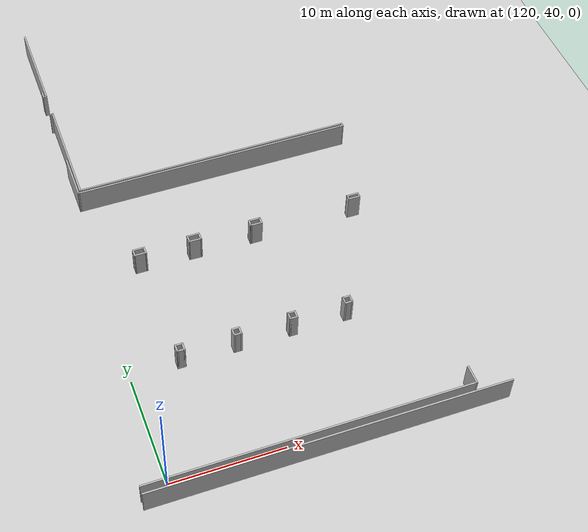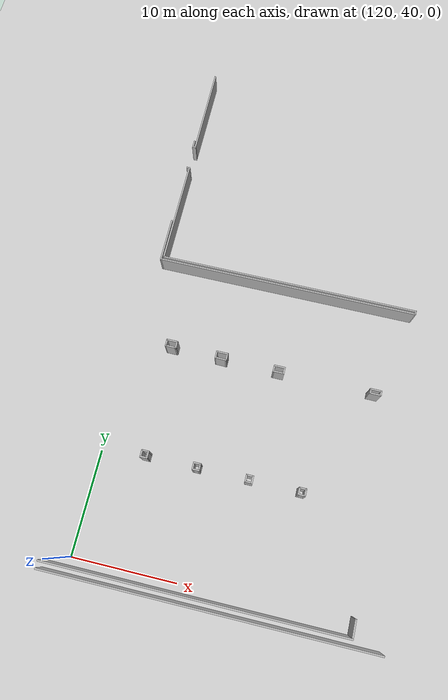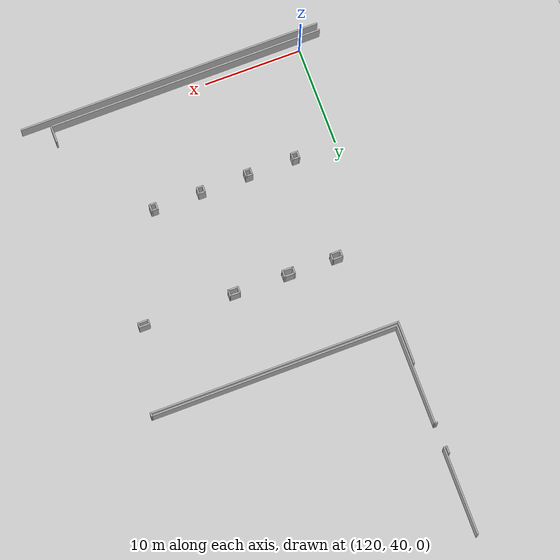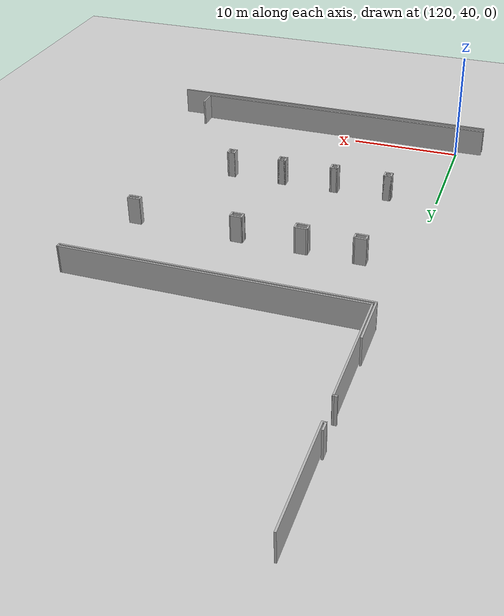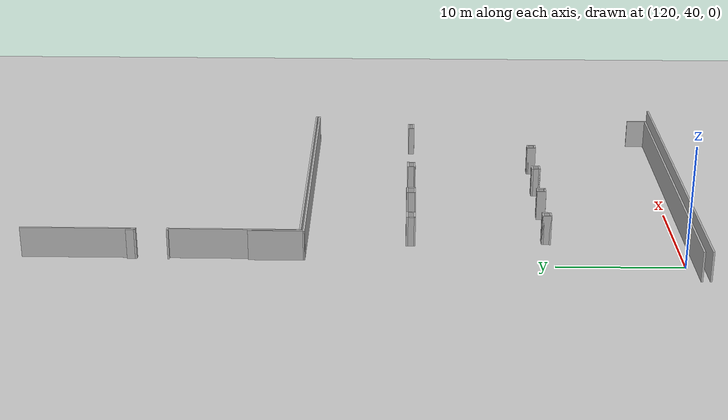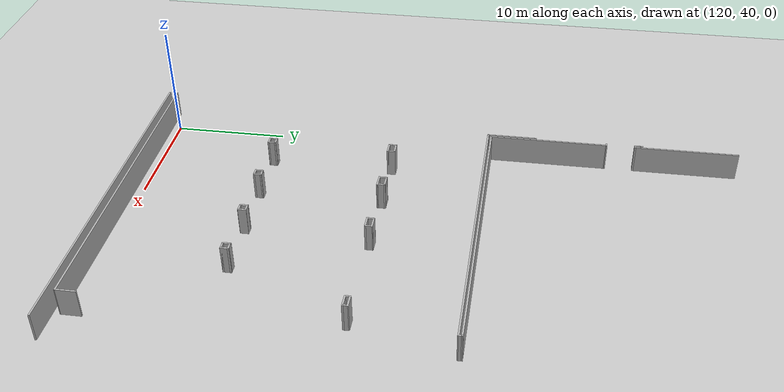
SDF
<sdf version="1.6">
 <world name="default">
  <model name="ground_plane">
   <static>1</static>
   <link name="link">
    <collision name="collision">
     <geometry><plane><normal>0 0 1</normal><size>200 100</size></plane></geometry>
     <surface><friction><ode><mu>100</mu><mu2>50</mu2></ode></friction></surface>
    </collision>
    <visual name="visual">
     <cast_shadows>0</cast_shadows>
     <geometry><plane><normal>0 0 1</normal><size>200 100</size></plane></geometry>
     <material>
      <script><uri>file://media/materials/scripts/gazebo.material</uri><name>Gazebo/Grey</name></script>
     </material>
    </visual>
   </link>
  </model>
  <model name="vgke_production">
   <link name="Wall_145">
    <pose>47.3262 -7.39589 0 0 0 -1.57134</pose>
    <visual name="Wall_145_Visual">
     <pose>0 0 1.25 0 -0 0</pose>
     <geometry><box><size>1.74298 0.15 2.5</size></box></geometry>
    </visual>
    <collision name="Wall_145_Collision">
     <pose>0 0 1.25 0 -0 0</pose>
     <geometry><box><size>1.74298 0.15 2.5</size></box></geometry>
    </collision>
    <inertial>
     <inertia><ixx>1</ixx><ixy>0</ixy><ixz>0</ixz><iyy>1</iyy><iyz>0</iyz><izz>1</izz></inertia>
     <mass>1</mass>
    </inertial>
   </link>
   <link name="Wall_146">
    <pose>33.2248 -8.19956 0 0 0 -3.14108</pose>
    <visual name="Wall_146_Visual">
     <pose>0 0 1.25 0 -0 0</pose>
     <geometry><box><size>28.3519 0.15 2.5</size></box></geometry>
    </visual>
    <collision name="Wall_146_Collision">
     <pose>0 0 1.25 0 -0 0</pose>
     <geometry><box><size>28.3519 0.15 2.5</size></box></geometry>
    </collision>
    <inertial>
     <inertia><ixx>1</ixx><ixy>0</ixy><ixz>0</ixz><iyy>1</iyy><iyz>0</iyz><izz>1</izz></inertia>
     <mass>1</mass>
    </inertial>
   </link>
   <link name="Wall_151">
    <pose>34.6412 -8.90508 0 0 0 -9.4e-05</pose>
    <visual name="Wall_151_Visual">
     <pose>0 0 1.25 0 -0 0</pose>
     <geometry><box><size>31.1928 0.15 2.5</size></box></geometry>
    </visual>
    <collision name="Wall_151_Collision">
     <pose>0 0 1.25 0 -0 0</pose>
     <geometry><box><size>31.1928 0.15 2.5</size></box></geometry>
    </collision>
    <inertial>
     <inertia><ixx>1</ixx><ixy>0</ixy><ixz>0</ixz><iyy>1</iyy><iyz>0</iyz><izz>1</izz></inertia>
     <mass>1</mass>
    </inertial>
   </link>
   <link name="Wall_276">
    <pose>22.4941 27.4899 0 0 0 -1.57232</pose>
    <visual name="Wall_276_Visual">
     <pose>0 0 1.25 0 -0 0</pose>
     <geometry><box><size>10.4484 0.15 2.5</size></box></geometry>
    </visual>
    <collision name="Wall_276_Collision">
     <pose>0 0 1.25 0 -0 0</pose>
     <geometry><box><size>10.4484 0.15 2.5</size></box></geometry>
    </collision>
    <inertial>
     <inertia><ixx>1</ixx><ixy>0</ixy><ixz>0</ixz><iyy>1</iyy><iyz>0</iyz><izz>1</izz></inertia>
     <mass>1</mass>
    </inertial>
   </link>
   <link name="Wall_283">
    <pose>35.2418 22.3511 0 0 -0 0.001052</pose>
    <visual name="Wall_283_Visual">
     <pose>0 0 1.25 0 -0 0</pose>
     <geometry><box><size>25.643 0.15 2.5</size></box></geometry>
    </visual>
    <collision name="Wall_283_Collision">
     <pose>0 0 1.25 0 -0 0</pose>
     <geometry><box><size>25.643 0.15 2.5</size></box></geometry>
    </collision>
    <inertial>
     <inertia><ixx>1</ixx><ixy>0</ixy><ixz>0</ixz><iyy>1</iyy><iyz>0</iyz><izz>1</izz></inertia>
     <mass>1</mass>
    </inertial>
   </link>
   <link name="Wall_285">
    <pose>47.9869 22.2247 0 0 0 -1.5806</pose>
    <visual name="Wall_285_Visual">
     <pose>0 0 1.25 0 -0 0</pose>
     <geometry><box><size>0.429582 0.15 2.5</size></box></geometry>
    </visual>
    <collision name="Wall_285_Collision">
     <pose>0 0 1.25 0 -0 0</pose>
     <geometry><box><size>0.429582 0.15 2.5</size></box></geometry>
    </collision>
    <inertial>
     <inertia><ixx>1</ixx><ixy>0</ixy><ixz>0</ixz><iyy>1</iyy><iyz>0</iyz><izz>1</izz></inertia>
     <mass>1</mass>
    </inertial>
   </link>
   <link name="Wall_289">
    <pose>35.1231 22.0665 0 0 0 -3.14016</pose>
    <visual name="Wall_289_Visual">
     <pose>0 0 1.25 0 -0 0</pose>
     <geometry><box><size>25.8749 0.15 2.5</size></box></geometry>
    </visual>
    <collision name="Wall_289_Collision">
     <pose>0 0 1.25 0 -0 0</pose>
     <geometry><box><size>25.8749 0.15 2.5</size></box></geometry>
    </collision>
    <inertial>
     <inertia><ixx>1</ixx><ixy>0</ixy><ixz>0</ixz><iyy>1</iyy><iyz>0</iyz><izz>1</izz></inertia>
     <mass>1</mass>
    </inertial>
   </link>
   <link name="Wall_292">
    <pose>22.2626 24.1887 0 0 -0 1.56991</pose>
    <visual name="Wall_292_Visual">
     <pose>0 0 1.25 0 -0 0</pose>
     <geometry><box><size>4.43148 0.15 2.5</size></box></geometry>
    </visual>
    <collision name="Wall_292_Collision">
     <pose>0 0 1.25 0 -0 0</pose>
     <geometry><box><size>4.43148 0.15 2.5</size></box></geometry>
    </collision>
    <inertial>
     <inertia><ixx>1</ixx><ixy>0</ixy><ixz>0</ixz><iyy>1</iyy><iyz>0</iyz><izz>1</izz></inertia>
     <mass>1</mass>
    </inertial>
   </link>
   <link name="Wall_412">
    <pose>25.5392 14.0389 0 0 -0 0</pose>
    <visual name="Wall_412_Visual">
     <pose>0 0 1.25 0 -0 0</pose>
     <geometry><box><size>1.13191 0.15 2.5</size></box></geometry>
    </visual>
    <collision name="Wall_412_Collision">
     <pose>0 0 1.25 0 -0 0</pose>
     <geometry><box><size>1.13191 0.15 2.5</size></box></geometry>
    </collision>
    <inertial>
     <inertia><ixx>1</ixx><ixy>0</ixy><ixz>0</ixz><iyy>1</iyy><iyz>0</iyz><izz>1</izz></inertia>
     <mass>1</mass>
    </inertial>
   </link>
   <link name="Wall_413">
    <pose>26.0302 13.7389 0 0 0 -1.5708</pose>
    <visual name="Wall_413_Visual">
     <pose>0 0 1.25 0 -0 0</pose>
     <geometry><box><size>0.75 0.15 2.5</size></box></geometry>
    </visual>
    <collision name="Wall_413_Collision">
     <pose>0 0 1.25 0 -0 0</pose>
     <geometry><box><size>0.75 0.15 2.5</size></box></geometry>
    </collision>
    <inertial>
     <inertia><ixx>1</ixx><ixy>0</ixy><ixz>0</ixz><iyy>1</iyy><iyz>0</iyz><izz>1</izz></inertia>
     <mass>1</mass>
    </inertial>
   </link>
   <link name="Wall_417">
    <pose>25.5392 13.4394 0 0 -0 3.14051</pose>
    <visual name="Wall_417_Visual">
     <pose>0 0 1.25 0 -0 0</pose>
     <geometry><box><size>1.1319 0.15 2.5</size></box></geometry>
    </visual>
    <collision name="Wall_417_Collision">
     <pose>0 0 1.25 0 -0 0</pose>
     <geometry><box><size>1.1319 0.15 2.5</size></box></geometry>
    </collision>
    <inertial>
     <inertia><ixx>1</ixx><ixy>0</ixy><ixz>0</ixz><iyy>1</iyy><iyz>0</iyz><izz>1</izz></inertia>
     <mass>1</mass>
    </inertial>
   </link>
   <link name="Wall_418">
    <pose>25.0483 13.7394 0 0 -0 1.5708</pose>
    <visual name="Wall_418_Visual">
     <pose>0 0 1.25 0 -0 0</pose>
     <geometry><box><size>0.748933 0.15 2.5</size></box></geometry>
    </visual>
    <collision name="Wall_418_Collision">
     <pose>0 0 1.25 0 -0 0</pose>
     <geometry><box><size>0.748933 0.15 2.5</size></box></geometry>
    </collision>
    <inertial>
     <inertia><ixx>1</ixx><ixy>0</ixy><ixz>0</ixz><iyy>1</iyy><iyz>0</iyz><izz>1</izz></inertia>
     <mass>1</mass>
    </inertial>
   </link>
   <link name="Wall_424">
    <pose>30.5232 13.9827 0 0 -0 0</pose>
    <visual name="Wall_424_Visual">
     <pose>0 0 1.25 0 -0 0</pose>
     <geometry><box><size>1.19162 0.15 2.5</size></box></geometry>
    </visual>
    <collision name="Wall_424_Collision">
     <pose>0 0 1.25 0 -0 0</pose>
     <geometry><box><size>1.19162 0.15 2.5</size></box></geometry>
    </collision>
    <inertial>
     <inertia><ixx>1</ixx><ixy>0</ixy><ixz>0</ixz><iyy>1</iyy><iyz>0</iyz><izz>1</izz></inertia>
     <mass>1</mass>
    </inertial>
   </link>
   <link name="Wall_428">
    <pose>30.0024 13.6796 0 0 0 -1.5708</pose>
    <visual name="Wall_428_Visual">
     <pose>0 0 1.25 0 -0 0</pose>
     <geometry><box><size>0.756251 0.15 2.5</size></box></geometry>
    </visual>
    <collision name="Wall_428_Collision">
     <pose>0 0 1.25 0 -0 0</pose>
     <geometry><box><size>0.756251 0.15 2.5</size></box></geometry>
    </collision>
    <inertial>
     <inertia><ixx>1</ixx><ixy>0</ixy><ixz>0</ixz><iyy>1</iyy><iyz>0</iyz><izz>1</izz></inertia>
     <mass>1</mass>
    </inertial>
   </link>
   <link name="Wall_430">
    <pose>31.044 13.6668 0 0 0 -1.5708</pose>
    <visual name="Wall_430_Visual">
     <pose>0 0 1.25 0 -0 0</pose>
     <geometry><box><size>0.782323 0.15 2.5</size></box></geometry>
    </visual>
    <collision name="Wall_430_Collision">
     <pose>0 0 1.25 0 -0 0</pose>
     <geometry><box><size>0.782323 0.15 2.5</size></box></geometry>
    </collision>
    <inertial>
     <inertia><ixx>1</ixx><ixy>0</ixy><ixz>0</ixz><iyy>1</iyy><iyz>0</iyz><izz>1</izz></inertia>
     <mass>1</mass>
    </inertial>
   </link>
   <link name="Wall_431">
    <pose>30.5232 13.3637 0 0 -0 3.11701</pose>
    <visual name="Wall_431_Visual">
     <pose>0 0 1.25 0 -0 0</pose>
     <geometry><box><size>1.19194 0.15 2.5</size></box></geometry>
    </visual>
    <collision name="Wall_431_Collision">
     <pose>0 0 1.25 0 -0 0</pose>
     <geometry><box><size>1.19194 0.15 2.5</size></box></geometry>
    </collision>
    <inertial>
     <inertia><ixx>1</ixx><ixy>0</ixy><ixz>0</ixz><iyy>1</iyy><iyz>0</iyz><izz>1</izz></inertia>
     <mass>1</mass>
    </inertial>
   </link>
   <link name="Wall_433">
    <pose>36.2009 13.8845 0 0 0 -0.008772</pose>
    <visual name="Wall_433_Visual">
     <pose>0 0 1.25 0 -0 0</pose>
     <geometry><box><size>1.12332 0.15 2.5</size></box></geometry>
    </visual>
    <collision name="Wall_433_Collision">
     <pose>0 0 1.25 0 -0 0</pose>
     <geometry><box><size>1.12332 0.15 2.5</size></box></geometry>
    </collision>
    <inertial>
     <inertia><ixx>1</ixx><ixy>0</ixy><ixz>0</ixz><iyy>1</iyy><iyz>0</iyz><izz>1</izz></inertia>
     <mass>1</mass>
    </inertial>
   </link>
   <link name="Wall_434">
    <pose>36.6876 13.6071 0 0 0 -1.5708</pose>
    <visual name="Wall_434_Visual">
     <pose>0 0 1.25 0 -0 0</pose>
     <geometry><box><size>0.696425 0.15 2.5</size></box></geometry>
    </visual>
    <collision name="Wall_434_Collision">
     <pose>0 0 1.25 0 -0 0</pose>
     <geometry><box><size>0.696425 0.15 2.5</size></box></geometry>
    </collision>
    <inertial>
     <inertia><ixx>1</ixx><ixy>0</ixy><ixz>0</ixz><iyy>1</iyy><iyz>0</iyz><izz>1</izz></inertia>
     <mass>1</mass>
    </inertial>
   </link>
   <link name="Wall_435">
    <pose>36.1924 13.3338 0 0 -0 3.14159</pose>
    <visual name="Wall_435_Visual">
     <pose>0 0 1.25 0 -0 0</pose>
     <geometry><box><size>1.14043 0.15 2.5</size></box></geometry>
    </visual>
    <collision name="Wall_435_Collision">
     <pose>0 0 1.25 0 -0 0</pose>
     <geometry><box><size>1.14043 0.15 2.5</size></box></geometry>
    </collision>
    <inertial>
     <inertia><ixx>1</ixx><ixy>0</ixy><ixz>0</ixz><iyy>1</iyy><iyz>0</iyz><izz>1</izz></inertia>
     <mass>1</mass>
    </inertial>
   </link>
   <link name="Wall_436">
    <pose>35.7057 13.6113 0 0 -0 1.54004</pose>
    <visual name="Wall_436_Visual">
     <pose>0 0 1.25 0 -0 0</pose>
     <geometry><box><size>0.705226 0.15 2.5</size></box></geometry>
    </visual>
    <collision name="Wall_436_Collision">
     <pose>0 0 1.25 0 -0 0</pose>
     <geometry><box><size>0.705226 0.15 2.5</size></box></geometry>
    </collision>
    <inertial>
     <inertia><ixx>1</ixx><ixy>0</ixy><ixz>0</ixz><iyy>1</iyy><iyz>0</iyz><izz>1</izz></inertia>
     <mass>1</mass>
    </inertial>
   </link>
   <link name="Wall_444">
    <pose>45.5664 13.7342 0 0 0 -0.003759</pose>
    <visual name="Wall_444_Visual">
     <pose>0 0 1.25 0 -0 0</pose>
     <geometry><box><size>1.13186 0.15 2.5</size></box></geometry>
    </visual>
    <collision name="Wall_444_Collision">
     <pose>0 0 1.25 0 -0 0</pose>
     <geometry><box><size>1.13186 0.15 2.5</size></box></geometry>
    </collision>
    <inertial>
     <inertia><ixx>1</ixx><ixy>0</ixy><ixz>0</ixz><iyy>1</iyy><iyz>0</iyz><izz>1</izz></inertia>
     <mass>1</mass>
    </inertial>
   </link>
   <link name="Wall_445">
    <pose>46.0573 13.5221 0 0 0 -1.5708</pose>
    <visual name="Wall_445_Visual">
     <pose>0 0 1.25 0 -0 0</pose>
     <geometry><box><size>0.410212 0.15 2.5</size></box></geometry>
    </visual>
    <collision name="Wall_445_Collision">
     <pose>0 0 1.25 0 -0 0</pose>
     <geometry><box><size>0.410212 0.15 2.5</size></box></geometry>
    </collision>
    <inertial>
     <inertia><ixx>1</ixx><ixy>0</ixy><ixz>0</ixz><iyy>1</iyy><iyz>0</iyz><izz>1</izz></inertia>
     <mass>1</mass>
    </inertial>
   </link>
   <link name="Wall_446">
    <pose>45.5656 13.3386 0 0 -0 3.1341</pose>
    <visual name="Wall_446_Visual">
     <pose>0 0 1.25 0 -0 0</pose>
     <geometry><box><size>1.13557 0.15 2.5</size></box></geometry>
    </visual>
    <collision name="Wall_446_Collision">
     <pose>0 0 1.25 0 -0 0</pose>
     <geometry><box><size>1.13557 0.15 2.5</size></box></geometry>
    </collision>
    <inertial>
     <inertia><ixx>1</ixx><ixy>0</ixy><ixz>0</ixz><iyy>1</iyy><iyz>0</iyz><izz>1</izz></inertia>
     <mass>1</mass>
    </inertial>
   </link>
   <link name="Wall_447">
    <pose>45.074 13.5269 0 0 -0 1.56385</pose>
    <visual name="Wall_447_Visual">
     <pose>0 0 1.25 0 -0 0</pose>
     <geometry><box><size>0.509887 0.15 2.5</size></box></geometry>
    </visual>
    <collision name="Wall_447_Collision">
     <pose>0 0 1.25 0 -0 0</pose>
     <geometry><box><size>0.509887 0.15 2.5</size></box></geometry>
    </collision>
    <inertial>
     <inertia><ixx>1</ixx><ixy>0</ixy><ixz>0</ixz><iyy>1</iyy><iyz>0</iyz><izz>1</izz></inertia>
     <mass>1</mass>
    </inertial>
   </link>
   <link name="Wall_450">
    <pose>40.3613 2.93319 0 0 0 -1.5708</pose>
    <visual name="Wall_450_Visual">
     <pose>0 0 1.25 0 -0 0</pose>
     <geometry><box><size>0.75 0.15 2.5</size></box></geometry>
    </visual>
    <collision name="Wall_450_Collision">
     <pose>0 0 1.25 0 -0 0</pose>
     <geometry><box><size>0.75 0.15 2.5</size></box></geometry>
    </collision>
    <inertial>
     <inertia><ixx>1</ixx><ixy>0</ixy><ixz>0</ixz><iyy>1</iyy><iyz>0</iyz><izz>1</izz></inertia>
     <mass>1</mass>
    </inertial>
   </link>
   <link name="Wall_451">
    <pose>40.6613 2.6332 0 0 -0 0</pose>
    <visual name="Wall_451_Visual">
     <pose>0 0 1.25 0 -0 0</pose>
     <geometry><box><size>0.75 0.15 2.5</size></box></geometry>
    </visual>
    <collision name="Wall_451_Collision">
     <pose>0 0 1.25 0 -0 0</pose>
     <geometry><box><size>0.75 0.15 2.5</size></box></geometry>
    </collision>
    <inertial>
     <inertia><ixx>1</ixx><ixy>0</ixy><ixz>0</ixz><iyy>1</iyy><iyz>0</iyz><izz>1</izz></inertia>
     <mass>1</mass>
    </inertial>
   </link>
   <link name="Wall_452">
    <pose>40.9613 2.93319 0 0 -0 1.5708</pose>
    <visual name="Wall_452_Visual">
     <pose>0 0 1.25 0 -0 0</pose>
     <geometry><box><size>0.75 0.15 2.5</size></box></geometry>
    </visual>
    <collision name="Wall_452_Collision">
     <pose>0 0 1.25 0 -0 0</pose>
     <geometry><box><size>0.75 0.15 2.5</size></box></geometry>
    </collision>
    <inertial>
     <inertia><ixx>1</ixx><ixy>0</ixy><ixz>0</ixz><iyy>1</iyy><iyz>0</iyz><izz>1</izz></inertia>
     <mass>1</mass>
    </inertial>
   </link>
   <link name="Wall_453">
    <pose>40.6613 3.23319 0 0 -0 3.14159</pose>
    <visual name="Wall_453_Visual">
     <pose>0 0 1.25 0 -0 0</pose>
     <geometry><box><size>0.75 0.15 2.5</size></box></geometry>
    </visual>
    <collision name="Wall_453_Collision">
     <pose>0 0 1.25 0 -0 0</pose>
     <geometry><box><size>0.75 0.15 2.5</size></box></geometry>
    </collision>
    <inertial>
     <inertia><ixx>1</ixx><ixy>0</ixy><ixz>0</ixz><iyy>1</iyy><iyz>0</iyz><izz>1</izz></inertia>
     <mass>1</mass>
    </inertial>
   </link>
   <link name="Wall_455">
    <pose>35.7102 3.2554 0 0 -0 0</pose>
    <visual name="Wall_455_Visual">
     <pose>0 0 1.25 0 -0 0</pose>
     <geometry><box><size>0.75 0.15 2.5</size></box></geometry>
    </visual>
    <collision name="Wall_455_Collision">
     <pose>0 0 1.25 0 -0 0</pose>
     <geometry><box><size>0.75 0.15 2.5</size></box></geometry>
    </collision>
    <inertial>
     <inertia><ixx>1</ixx><ixy>0</ixy><ixz>0</ixz><iyy>1</iyy><iyz>0</iyz><izz>1</izz></inertia>
     <mass>1</mass>
    </inertial>
   </link>
   <link name="Wall_456">
    <pose>36.0102 2.9554 0 0 0 -1.5708</pose>
    <visual name="Wall_456_Visual">
     <pose>0 0 1.25 0 -0 0</pose>
     <geometry><box><size>0.75 0.15 2.5</size></box></geometry>
    </visual>
    <collision name="Wall_456_Collision">
     <pose>0 0 1.25 0 -0 0</pose>
     <geometry><box><size>0.75 0.15 2.5</size></box></geometry>
    </collision>
    <inertial>
     <inertia><ixx>1</ixx><ixy>0</ixy><ixz>0</ixz><iyy>1</iyy><iyz>0</iyz><izz>1</izz></inertia>
     <mass>1</mass>
    </inertial>
   </link>
   <link name="Wall_457">
    <pose>35.7102 2.6554 0 0 -0 3.14159</pose>
    <visual name="Wall_457_Visual">
     <pose>0 0 1.25 0 -0 0</pose>
     <geometry><box><size>0.75 0.15 2.5</size></box></geometry>
    </visual>
    <collision name="Wall_457_Collision">
     <pose>0 0 1.25 0 -0 0</pose>
     <geometry><box><size>0.75 0.15 2.5</size></box></geometry>
    </collision>
    <inertial>
     <inertia><ixx>1</ixx><ixy>0</ixy><ixz>0</ixz><iyy>1</iyy><iyz>0</iyz><izz>1</izz></inertia>
     <mass>1</mass>
    </inertial>
   </link>
   <link name="Wall_458">
    <pose>35.4102 2.9554 0 0 -0 1.5708</pose>
    <visual name="Wall_458_Visual">
     <pose>0 0 1.25 0 -0 0</pose>
     <geometry><box><size>0.75 0.15 2.5</size></box></geometry>
    </visual>
    <collision name="Wall_458_Collision">
     <pose>0 0 1.25 0 -0 0</pose>
     <geometry><box><size>0.75 0.15 2.5</size></box></geometry>
    </collision>
    <inertial>
     <inertia><ixx>1</ixx><ixy>0</ixy><ixz>0</ixz><iyy>1</iyy><iyz>0</iyz><izz>1</izz></inertia>
     <mass>1</mass>
    </inertial>
   </link>
   <link name="Wall_461">
    <pose>30.748 3.23319 0 0 -0 0</pose>
    <visual name="Wall_461_Visual">
     <pose>0 0 1.25 0 -0 0</pose>
     <geometry><box><size>0.75 0.15 2.5</size></box></geometry>
    </visual>
    <collision name="Wall_461_Collision">
     <pose>0 0 1.25 0 -0 0</pose>
     <geometry><box><size>0.75 0.15 2.5</size></box></geometry>
    </collision>
    <inertial>
     <inertia><ixx>1</ixx><ixy>0</ixy><ixz>0</ixz><iyy>1</iyy><iyz>0</iyz><izz>1</izz></inertia>
     <mass>1</mass>
    </inertial>
   </link>
   <link name="Wall_462">
    <pose>31.048 2.93319 0 0 0 -1.5708</pose>
    <visual name="Wall_462_Visual">
     <pose>0 0 1.25 0 -0 0</pose>
     <geometry><box><size>0.75 0.15 2.5</size></box></geometry>
    </visual>
    <collision name="Wall_462_Collision">
     <pose>0 0 1.25 0 -0 0</pose>
     <geometry><box><size>0.75 0.15 2.5</size></box></geometry>
    </collision>
    <inertial>
     <inertia><ixx>1</ixx><ixy>0</ixy><ixz>0</ixz><iyy>1</iyy><iyz>0</iyz><izz>1</izz></inertia>
     <mass>1</mass>
    </inertial>
   </link>
   <link name="Wall_463">
    <pose>30.748 2.6332 0 0 -0 3.14159</pose>
    <visual name="Wall_463_Visual">
     <pose>0 0 1.25 0 -0 0</pose>
     <geometry><box><size>0.75 0.15 2.5</size></box></geometry>
    </visual>
    <collision name="Wall_463_Collision">
     <pose>0 0 1.25 0 -0 0</pose>
     <geometry><box><size>0.75 0.15 2.5</size></box></geometry>
    </collision>
    <inertial>
     <inertia><ixx>1</ixx><ixy>0</ixy><ixz>0</ixz><iyy>1</iyy><iyz>0</iyz><izz>1</izz></inertia>
     <mass>1</mass>
    </inertial>
   </link>
   <link name="Wall_464">
    <pose>30.448 2.93319 0 0 -0 1.5708</pose>
    <visual name="Wall_464_Visual">
     <pose>0 0 1.25 0 -0 0</pose>
     <geometry><box><size>0.75 0.15 2.5</size></box></geometry>
    </visual>
    <collision name="Wall_464_Collision">
     <pose>0 0 1.25 0 -0 0</pose>
     <geometry><box><size>0.75 0.15 2.5</size></box></geometry>
    </collision>
    <inertial>
     <inertia><ixx>1</ixx><ixy>0</ixy><ixz>0</ixz><iyy>1</iyy><iyz>0</iyz><izz>1</izz></inertia>
     <mass>1</mass>
    </inertial>
   </link>
   <link name="Wall_466">
    <pose>25.8079 3.2443 0 0 -0 0</pose>
    <visual name="Wall_466_Visual">
     <pose>0 0 1.25 0 -0 0</pose>
     <geometry><box><size>0.75 0.15 2.5</size></box></geometry>
    </visual>
    <collision name="Wall_466_Collision">
     <pose>0 0 1.25 0 -0 0</pose>
     <geometry><box><size>0.75 0.15 2.5</size></box></geometry>
    </collision>
    <inertial>
     <inertia><ixx>1</ixx><ixy>0</ixy><ixz>0</ixz><iyy>1</iyy><iyz>0</iyz><izz>1</izz></inertia>
     <mass>1</mass>
    </inertial>
   </link>
   <link name="Wall_467">
    <pose>26.1079 2.9443 0 0 0 -1.5708</pose>
    <visual name="Wall_467_Visual">
     <pose>0 0 1.25 0 -0 0</pose>
     <geometry><box><size>0.75 0.15 2.5</size></box></geometry>
    </visual>
    <collision name="Wall_467_Collision">
     <pose>0 0 1.25 0 -0 0</pose>
     <geometry><box><size>0.75 0.15 2.5</size></box></geometry>
    </collision>
    <inertial>
     <inertia><ixx>1</ixx><ixy>0</ixy><ixz>0</ixz><iyy>1</iyy><iyz>0</iyz><izz>1</izz></inertia>
     <mass>1</mass>
    </inertial>
   </link>
   <link name="Wall_468">
    <pose>25.8079 2.6443 0 0 -0 3.14159</pose>
    <visual name="Wall_468_Visual">
     <pose>0 0 1.25 0 -0 0</pose>
     <geometry><box><size>0.75 0.15 2.5</size></box></geometry>
    </visual>
    <collision name="Wall_468_Collision">
     <pose>0 0 1.25 0 -0 0</pose>
     <geometry><box><size>0.75 0.15 2.5</size></box></geometry>
    </collision>
    <inertial>
     <inertia><ixx>1</ixx><ixy>0</ixy><ixz>0</ixz><iyy>1</iyy><iyz>0</iyz><izz>1</izz></inertia>
     <mass>1</mass>
    </inertial>
   </link>
   <link name="Wall_469">
    <pose>25.5079 2.9443 0 0 -0 1.5708</pose>
    <visual name="Wall_469_Visual">
     <pose>0 0 1.25 0 -0 0</pose>
     <geometry><box><size>0.75 0.15 2.5</size></box></geometry>
    </visual>
    <collision name="Wall_469_Collision">
     <pose>0 0 1.25 0 -0 0</pose>
     <geometry><box><size>0.75 0.15 2.5</size></box></geometry>
    </collision>
    <inertial>
     <inertia><ixx>1</ixx><ixy>0</ixy><ixz>0</ixz><iyy>1</iyy><iyz>0</iyz><izz>1</izz></inertia>
     <mass>1</mass>
    </inertial>
   </link>
   <link name="Wall_566">
    <pose>22.4959 39.6451 0 0 -0 1.5708</pose>
    <visual name="Wall_566_Visual">
     <pose>0 0 1.25 0 -0 0</pose>
     <geometry><box><size>9.09658 0.15 2.5</size></box></geometry>
    </visual>
    <collision name="Wall_566_Collision">
     <pose>0 0 1.25 0 -0 0</pose>
     <geometry><box><size>9.09658 0.15 2.5</size></box></geometry>
    </collision>
    <inertial>
     <inertia><ixx>1</ixx><ixy>0</ixy><ixz>0</ixz><iyy>1</iyy><iyz>0</iyz><izz>1</izz></inertia>
     <mass>1</mass>
    </inertial>
   </link>
   <link name="Wall_568">
    <pose>22.3766 35.1718 0 0 -0 3.14159</pose>
    <visual name="Wall_568_Visual">
     <pose>0 0 1.25 0 -0 0</pose>
     <geometry><box><size>0.389615 0.15 2.5</size></box></geometry>
    </visual>
    <collision name="Wall_568_Collision">
     <pose>0 0 1.25 0 -0 0</pose>
     <geometry><box><size>0.389615 0.15 2.5</size></box></geometry>
    </collision>
    <inertial>
     <inertia><ixx>1</ixx><ixy>0</ixy><ixz>0</ixz><iyy>1</iyy><iyz>0</iyz><izz>1</izz></inertia>
     <mass>1</mass>
    </inertial>
   </link>
   <link name="Wall_569">
    <pose>22.2572 35.4884 0 0 -0 1.5708</pose>
    <visual name="Wall_569_Visual">
     <pose>0 0 1.25 0 -0 0</pose>
     <geometry><box><size>0.783111 0.15 2.5</size></box></geometry>
    </visual>
    <collision name="Wall_569_Collision">
     <pose>0 0 1.25 0 -0 0</pose>
     <geometry><box><size>0.783111 0.15 2.5</size></box></geometry>
    </collision>
    <inertial>
     <inertia><ixx>1</ixx><ixy>0</ixy><ixz>0</ixz><iyy>1</iyy><iyz>0</iyz><izz>1</izz></inertia>
     <mass>1</mass>
    </inertial>
   </link>
   <link name="Wall_602">
    <pose>22.3926 32.639 0 0 -0 3.14159</pose>
    <visual name="Wall_602_Visual">
     <pose>0 0 1.25 0 -0 0</pose>
     <geometry><box><size>0.368656 0.15 2.5</size></box></geometry>
    </visual>
    <collision name="Wall_602_Collision">
     <pose>0 0 1.25 0 -0 0</pose>
     <geometry><box><size>0.368656 0.15 2.5</size></box></geometry>
    </collision>
    <inertial>
     <inertia><ixx>1</ixx><ixy>0</ixy><ixz>0</ixz><iyy>1</iyy><iyz>0</iyz><izz>1</izz></inertia>
     <mass>1</mass>
    </inertial>
   </link>
   <pose>98.6 47.426 0.01 0 0 0</pose>
  </model>
 </world>
</sdf>
